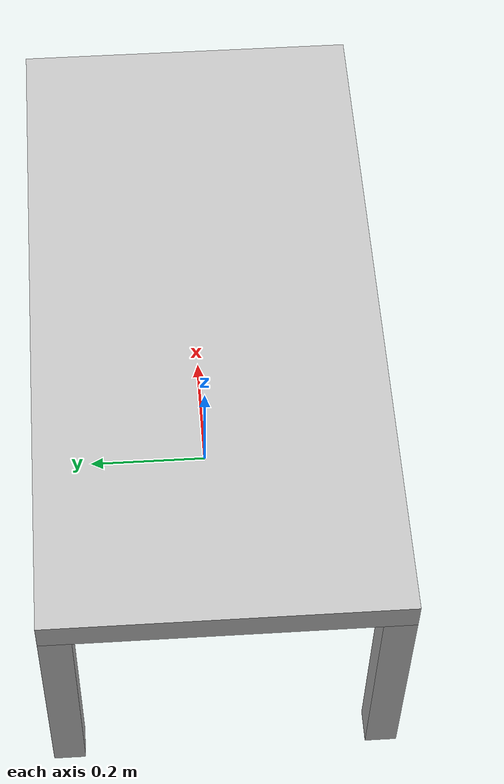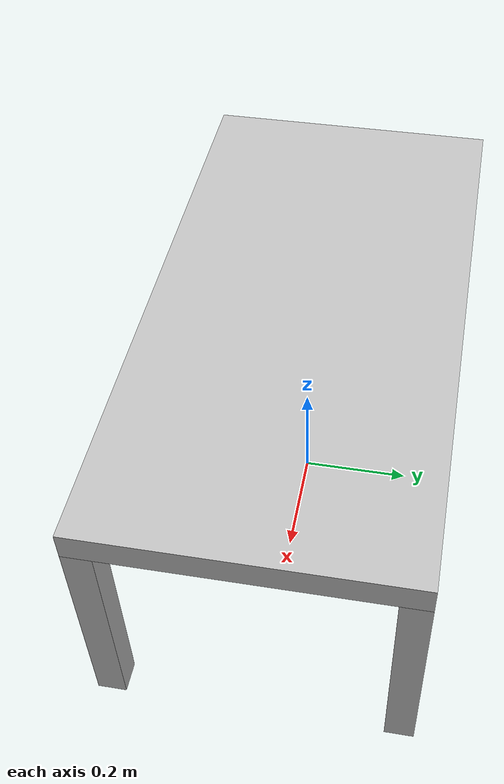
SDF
<?xml version="1.0"?>
<sdf version="1.6">
  <model name="rgo2017/table_salon_double">
    <link name="1_link">
      <collision name="1_col">
        <geometry>
          <box>
            <size>1.1 0.55 0.05</size>
          </box>
        </geometry>
      </collision>
      <visual name="1_vis">
        <geometry>
          <box>
            <size>1.1 0.55 0.05</size>
          </box>
        </geometry>
        <material>
          <ambient>0.75 0.75 0.75 1</ambient>
        </material>
      </visual>
      <pose>0 0 0.425 0 0 0</pose>
    </link>
    <link name="2_link">
      <collision name="2_col">
        <geometry>
          <box>
            <size>0.05 0.05 0.4</size>
          </box>
        </geometry>
      </collision>
      <visual name="2_vis">
        <geometry>
          <box>
            <size>0.05 0.05 0.4</size>
          </box>
        </geometry>
        <material>
          <ambient>0.75 0.75 0.75 1</ambient>
        </material>
      </visual>
      <pose>-0.525 -0.25 0.2 0 0 0</pose>
    </link>
    <link name="3_link">
      <collision name="3_col">
        <geometry>
          <box>
            <size>0.05 0.05 0.4</size>
          </box>
        </geometry>
      </collision>
      <visual name="3_vis">
        <geometry>
          <box>
            <size>0.05 0.05 0.4</size>
          </box>
        </geometry>
        <material>
          <ambient>0.75 0.75 0.75 1</ambient>
        </material>
      </visual>
      <pose>0.525 -0.25 0.2 0 0 0</pose>
    </link>
    <link name="4_link">
      <collision name="4_col">
        <geometry>
          <box>
            <size>0.05 0.05 0.4</size>
          </box>
        </geometry>
      </collision>
      <visual name="4_vis">
        <geometry>
          <box>
            <size>0.05 0.05 0.4</size>
          </box>
        </geometry>
        <material>
          <ambient>0.75 0.75 0.75 1</ambient>
        </material>
      </visual>
      <pose>-0.525 0.25 0.2 0 0 0</pose>
    </link>
    <link name="5_link">
      <collision name="5_col">
        <geometry>
          <box>
            <size>0.05 0.05 0.4</size>
          </box>
        </geometry>
      </collision>
      <visual name="5_vis">
        <geometry>
          <box>
            <size>0.05 0.05 0.4</size>
          </box>
        </geometry>
        <material>
          <ambient>0.75 0.75 0.75 1</ambient>
        </material>
      </visual>
      <pose>0.525 0.25 0.2 0 0 0</pose>
    </link>
    <link name="6_link">
      <collision name="6_col">
        <geometry>
          <box>
            <size>0.1 0.05 0.4</size>
          </box>
        </geometry>
      </collision>
      <visual name="6_vis">
        <geometry>
          <box>
            <size>0.1 0.05 0.4</size>
          </box>
        </geometry>
        <material>
          <ambient>0.75 0.75 0.75 1</ambient>
        </material>
      </visual>
      <pose>0 0.25 0.2 0 0 0</pose>
    </link>
    <link name="7_link">
      <collision name="7_col">
        <geometry>
          <box>
            <size>0.1 0.05 0.4</size>
          </box>
        </geometry>
      </collision>
      <visual name="7_vis">
        <geometry>
          <box>
            <size>0.1 0.05 0.4</size>
          </box>
        </geometry>
        <material>
          <ambient>0.75 0.75 0.75 1</ambient>
        </material>
      </visual>
      <pose>0 -0.25 0.2 0 0 0</pose>
    </link>
    <link name="on_top_of">
      <virtual_volume name="on_top_of_vv">
        <geometry>
          <box>
            <size>1.04 0.49 0.25</size>
          </box>
        </geometry>
        <pose>0.0 0.0 0.595 0 0 0</pose>
      </virtual_volume>
    </link>
    <link name="in_front_of">
      <virtual_volume name="in_front_of_vv">
        <geometry>
          <box>
            <size>0.2 0.35 0.01</size>
          </box>
        </geometry>
        <pose>1.4 0.0 0.005 0 0 0</pose>
      </virtual_volume>
    </link>
    <static>true</static>
  </model>
</sdf>
